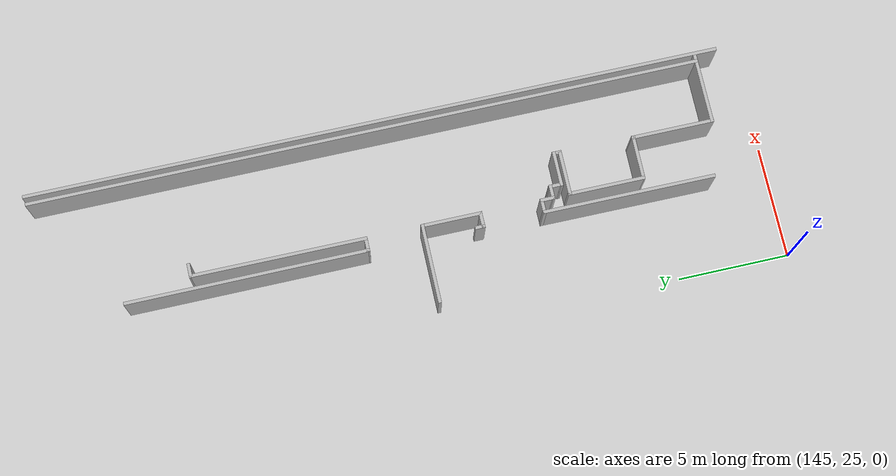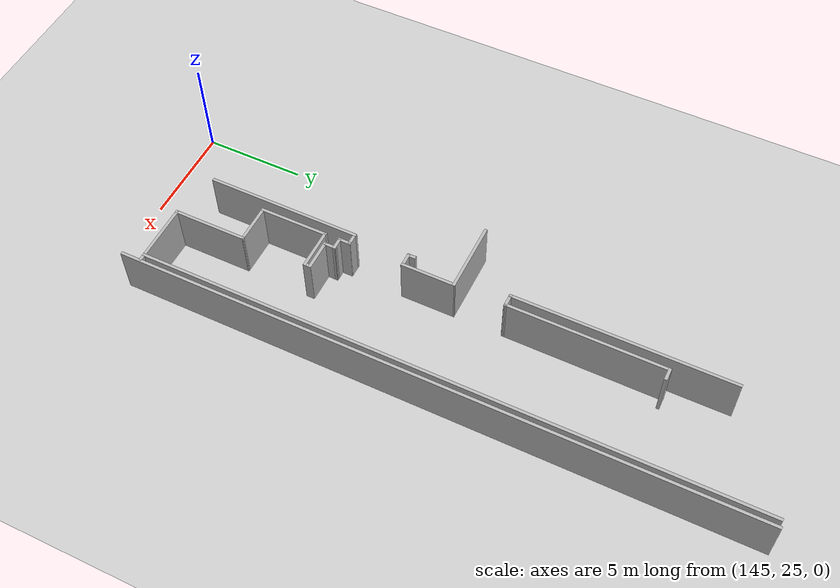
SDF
<sdf version="1.6">
 <world name="default">
  <model name="ground_plane">
   <static>1</static>
   <link name="link">
    <collision name="collision">
     <geometry><plane><normal>0 0 1</normal><size>200 100</size></plane></geometry>
     <surface><friction><ode><mu>100</mu><mu2>50</mu2></ode></friction></surface>
    </collision>
    <visual name="visual">
     <cast_shadows>0</cast_shadows>
     <geometry><plane><normal>0 0 1</normal><size>200 100</size></plane></geometry>
     <material>
      <script><uri>file://media/materials/scripts/gazebo.material</uri><name>Gazebo/Grey</name></script>
     </material>
    </visual>
   </link>
  </model>
  <model name="vgke_production">
   <link name="Wall_12">
    <pose>50.1996 -15.7948 0 0 -0 1.56852</pose>
    <visual name="Wall_12_Visual">
     <pose>0 0 1.25 0 -0 0</pose>
     <geometry><box><size>7.80179 0.15 2.5</size></box></geometry>
    </visual>
    <collision name="Wall_12_Collision">
     <pose>0 0 1.25 0 -0 0</pose>
     <geometry><box><size>7.80179 0.15 2.5</size></box></geometry>
    </collision>
    <inertial>
     <inertia><ixx>1</ixx><ixy>0</ixy><ixz>0</ixz><iyy>1</iyy><iyz>0</iyz><izz>1</izz></inertia>
     <mass>1</mass>
    </inertial>
   </link>
   <link name="Wall_138">
    <pose>50.4745 -9.20167 0 0 -0 0</pose>
    <visual name="Wall_138_Visual">
     <pose>0 0 1.25 0 -0 0</pose>
     <geometry><box><size>0.720907 0.15 2.5</size></box></geometry>
    </visual>
    <collision name="Wall_138_Collision">
     <pose>0 0 1.25 0 -0 0</pose>
     <geometry><box><size>0.720907 0.15 2.5</size></box></geometry>
    </collision>
    <inertial>
     <inertia><ixx>1</ixx><ixy>0</ixy><ixz>0</ixz><iyy>1</iyy><iyz>0</iyz><izz>1</izz></inertia>
     <mass>1</mass>
    </inertial>
   </link>
   <link name="Wall_14">
    <pose>50.475 -11.9697 0 0 0 -0.002665</pose>
    <visual name="Wall_14_Visual">
     <pose>0 0 1.25 0 -0 0</pose>
     <geometry><box><size>0.683464 0.15 2.5</size></box></geometry>
    </visual>
    <collision name="Wall_14_Collision">
     <pose>0 0 1.25 0 -0 0</pose>
     <geometry><box><size>0.683464 0.15 2.5</size></box></geometry>
    </collision>
    <inertial>
     <inertia><ixx>1</ixx><ixy>0</ixy><ixz>0</ixz><iyy>1</iyy><iyz>0</iyz><izz>1</izz></inertia>
     <mass>1</mass>
    </inertial>
   </link>
   <link name="Wall_140">
    <pose>50.76 -7.90167 0 0 -0 1.5708</pose>
    <visual name="Wall_140_Visual">
     <pose>0 0 1.25 0 -0 0</pose>
     <geometry><box><size>2.75 0.15 2.5</size></box></geometry>
    </visual>
    <collision name="Wall_140_Collision">
     <pose>0 0 1.25 0 -0 0</pose>
     <geometry><box><size>2.75 0.15 2.5</size></box></geometry>
    </collision>
    <inertial>
     <inertia><ixx>1</ixx><ixy>0</ixy><ixz>0</ixz><iyy>1</iyy><iyz>0</iyz><izz>1</izz></inertia>
     <mass>1</mass>
    </inertial>
   </link>
   <link name="Wall_141">
    <pose>49.0433 -6.60058 0 0 -0 3.14096</pose>
    <visual name="Wall_141_Visual">
     <pose>0 0 1.25 0 -0 0</pose>
     <geometry><box><size>3.58336 0.15 2.5</size></box></geometry>
    </visual>
    <collision name="Wall_141_Collision">
     <pose>0 0 1.25 0 -0 0</pose>
     <geometry><box><size>3.58336 0.15 2.5</size></box></geometry>
    </collision>
    <inertial>
     <inertia><ixx>1</ixx><ixy>0</ixy><ixz>0</ixz><iyy>1</iyy><iyz>0</iyz><izz>1</izz></inertia>
     <mass>1</mass>
    </inertial>
   </link>
   <link name="Wall_15">
    <pose>50.7471 -12.2307 0 0 0 -1.5708</pose>
    <visual name="Wall_15_Visual">
     <pose>0 0 1.25 0 -0 0</pose>
     <geometry><box><size>0.659957 0.15 2.5</size></box></geometry>
    </visual>
    <collision name="Wall_15_Collision">
     <pose>0 0 1.25 0 -0 0</pose>
     <geometry><box><size>0.659957 0.15 2.5</size></box></geometry>
    </collision>
    <inertial>
     <inertia><ixx>1</ixx><ixy>0</ixy><ixz>0</ixz><iyy>1</iyy><iyz>0</iyz><izz>1</izz></inertia>
     <mass>1</mass>
    </inertial>
   </link>
   <link name="Wall_153">
    <pose>50.1639 -9.05602 0 0 0 -1.56162</pose>
    <visual name="Wall_153_Visual">
     <pose>0 0 1.25 0 -0 0</pose>
     <geometry><box><size>0.448969 0.15 2.5</size></box></geometry>
    </visual>
    <collision name="Wall_153_Collision">
     <pose>0 0 1.25 0 -0 0</pose>
     <geometry><box><size>0.448969 0.15 2.5</size></box></geometry>
    </collision>
    <inertial>
     <inertia><ixx>1</ixx><ixy>0</ixy><ixz>0</ixz><iyy>1</iyy><iyz>0</iyz><izz>1</izz></inertia>
     <mass>1</mass>
    </inertial>
   </link>
   <link name="Wall_18">
    <pose>51.0074 -12.4853 0 0 -0 0.001398</pose>
    <visual name="Wall_18_Visual">
     <pose>0 0 1.25 0 -0 0</pose>
     <geometry><box><size>0.670553 0.15 2.5</size></box></geometry>
    </visual>
    <collision name="Wall_18_Collision">
     <pose>0 0 1.25 0 -0 0</pose>
     <geometry><box><size>0.670553 0.15 2.5</size></box></geometry>
    </collision>
    <inertial>
     <inertia><ixx>1</ixx><ixy>0</ixy><ixz>0</ixz><iyy>1</iyy><iyz>0</iyz><izz>1</izz></inertia>
     <mass>1</mass>
    </inertial>
   </link>
   <link name="Wall_22">
    <pose>51.2673 -12.7335 0 0 0 -1.57201</pose>
    <visual name="Wall_22_Visual">
     <pose>0 0 1.25 0 -0 0</pose>
     <geometry><box><size>0.647317 0.15 2.5</size></box></geometry>
    </visual>
    <collision name="Wall_22_Collision">
     <pose>0 0 1.25 0 -0 0</pose>
     <geometry><box><size>0.647317 0.15 2.5</size></box></geometry>
    </collision>
    <inertial>
     <inertia><ixx>1</ixx><ixy>0</ixy><ixz>0</ixz><iyy>1</iyy><iyz>0</iyz><izz>1</izz></inertia>
     <mass>1</mass>
    </inertial>
   </link>
   <link name="Wall_30">
    <pose>51.9831 -12.9827 0 0 0 -0.000703</pose>
    <visual name="Wall_30_Visual">
     <pose>0 0 1.25 0 -0 0</pose>
     <geometry><box><size>1.58221 0.15 2.5</size></box></geometry>
    </visual>
    <collision name="Wall_30_Collision">
     <pose>0 0 1.25 0 -0 0</pose>
     <geometry><box><size>1.58221 0.15 2.5</size></box></geometry>
    </collision>
    <inertial>
     <inertia><ixx>1</ixx><ixy>0</ixy><ixz>0</ixz><iyy>1</iyy><iyz>0</iyz><izz>1</izz></inertia>
     <mass>1</mass>
    </inertial>
   </link>
   <link name="Wall_31">
    <pose>52.6993 -13.1157 0 0 0 -1.5708</pose>
    <visual name="Wall_31_Visual">
     <pose>0 0 1.25 0 -0 0</pose>
     <geometry><box><size>0.414891 0.15 2.5</size></box></geometry>
    </visual>
    <collision name="Wall_31_Collision">
     <pose>0 0 1.25 0 -0 0</pose>
     <geometry><box><size>0.414891 0.15 2.5</size></box></geometry>
    </collision>
    <inertial>
     <inertia><ixx>1</ixx><ixy>0</ixy><ixz>0</ixz><iyy>1</iyy><iyz>0</iyz><izz>1</izz></inertia>
     <mass>1</mass>
    </inertial>
   </link>
   <link name="Wall_32">
    <pose>51.7345 -13.2481 0 0 -0 3.14159</pose>
    <visual name="Wall_32_Visual">
     <pose>0 0 1.25 0 -0 0</pose>
     <geometry><box><size>2.07952 0.15 2.5</size></box></geometry>
    </visual>
    <collision name="Wall_32_Collision">
     <pose>0 0 1.25 0 -0 0</pose>
     <geometry><box><size>2.07952 0.15 2.5</size></box></geometry>
    </collision>
    <inertial>
     <inertia><ixx>1</ixx><ixy>0</ixy><ixz>0</ixz><iyy>1</iyy><iyz>0</iyz><izz>1</izz></inertia>
     <mass>1</mass>
    </inertial>
   </link>
   <link name="Wall_334">
    <pose>55.8267 -5.44284 0 0 0 -1.5708</pose>
    <visual name="Wall_334_Visual">
     <pose>0 0 1.25 0 -0 0</pose>
     <geometry><box><size>31.5 0.15 2.5</size></box></geometry>
    </visual>
    <collision name="Wall_334_Collision">
     <pose>0 0 1.25 0 -0 0</pose>
     <geometry><box><size>31.5 0.15 2.5</size></box></geometry>
    </collision>
    <inertial>
     <inertia><ixx>1</ixx><ixy>0</ixy><ixz>0</ixz><iyy>1</iyy><iyz>0</iyz><izz>1</izz></inertia>
     <mass>1</mass>
    </inertial>
   </link>
   <link name="Wall_338">
    <pose>50.4756 -4.04468 0 0 0 -0.007038</pose>
    <visual name="Wall_338_Visual">
     <pose>0 0 1.25 0 -0 0</pose>
     <geometry><box><size>0.690739 0.15 2.5</size></box></geometry>
    </visual>
    <collision name="Wall_338_Collision">
     <pose>0 0 1.25 0 -0 0</pose>
     <geometry><box><size>0.690739 0.15 2.5</size></box></geometry>
    </collision>
    <inertial>
     <inertia><ixx>1</ixx><ixy>0</ixy><ixz>0</ixz><iyy>1</iyy><iyz>0</iyz><izz>1</izz></inertia>
     <mass>1</mass>
    </inertial>
   </link>
   <link name="Wall_339">
    <pose>50.7545 -0.144958 0 0 -0 1.56861</pose>
    <visual name="Wall_339_Visual">
     <pose>0 0 1.25 0 -0 0</pose>
     <geometry><box><size>7.94156 0.15 2.5</size></box></geometry>
    </visual>
    <collision name="Wall_339_Collision">
     <pose>0 0 1.25 0 -0 0</pose>
     <geometry><box><size>7.94156 0.15 2.5</size></box></geometry>
    </collision>
    <inertial>
     <inertia><ixx>1</ixx><ixy>0</ixy><ixz>0</ixz><iyy>1</iyy><iyz>0</iyz><izz>1</izz></inertia>
     <mass>1</mass>
    </inertial>
   </link>
   <link name="Wall_34">
    <pose>50.7697 -14.9127 0 0 0 -1.5708</pose>
    <visual name="Wall_34_Visual">
     <pose>0 0 1.25 0 -0 0</pose>
     <geometry><box><size>3.47928 0.15 2.5</size></box></geometry>
    </visual>
    <collision name="Wall_34_Collision">
     <pose>0 0 1.25 0 -0 0</pose>
     <geometry><box><size>3.47928 0.15 2.5</size></box></geometry>
    </collision>
    <inertial>
     <inertia><ixx>1</ixx><ixy>0</ixy><ixz>0</ixz><iyy>1</iyy><iyz>0</iyz><izz>1</izz></inertia>
     <mass>1</mass>
    </inertial>
   </link>
   <link name="Wall_341">
    <pose>51.0115 3.75105 0 0 -0 0.000958</pose>
    <visual name="Wall_341_Visual">
     <pose>0 0 1.25 0 -0 0</pose>
     <geometry><box><size>0.646933 0.15 2.5</size></box></geometry>
    </visual>
    <collision name="Wall_341_Collision">
     <pose>0 0 1.25 0 -0 0</pose>
     <geometry><box><size>0.646933 0.15 2.5</size></box></geometry>
    </collision>
    <inertial>
     <inertia><ixx>1</ixx><ixy>0</ixy><ixz>0</ixz><iyy>1</iyy><iyz>0</iyz><izz>1</izz></inertia>
     <mass>1</mass>
    </inertial>
   </link>
   <link name="Wall_356">
    <pose>50.196 1.36161 0 0 0 -1.56909</pose>
    <visual name="Wall_356_Visual">
     <pose>0 0 1.25 0 -0 0</pose>
     <geometry><box><size>10.9588 0.15 2.5</size></box></geometry>
    </visual>
    <collision name="Wall_356_Collision">
     <pose>0 0 1.25 0 -0 0</pose>
     <geometry><box><size>10.9588 0.15 2.5</size></box></geometry>
    </collision>
    <inertial>
     <inertia><ixx>1</ixx><ixy>0</ixy><ixz>0</ixz><iyy>1</iyy><iyz>0</iyz><izz>1</izz></inertia>
     <mass>1</mass>
    </inertial>
   </link>
   <link name="Wall_40">
    <pose>52.6497 -18.385 0 0 -0 1.5708</pose>
    <visual name="Wall_40_Visual">
     <pose>0 0 1.25 0 -0 0</pose>
     <geometry><box><size>3.75 0.15 2.5</size></box></geometry>
    </visual>
    <collision name="Wall_40_Collision">
     <pose>0 0 1.25 0 -0 0</pose>
     <geometry><box><size>3.75 0.15 2.5</size></box></geometry>
    </collision>
    <inertial>
     <inertia><ixx>1</ixx><ixy>0</ixy><ixz>0</ixz><iyy>1</iyy><iyz>0</iyz><izz>1</izz></inertia>
     <mass>1</mass>
    </inertial>
   </link>
   <link name="Wall_41">
    <pose>51.7097 -16.5812 0 0 -0 3.13751</pose>
    <visual name="Wall_41_Visual">
     <pose>0 0 1.25 0 -0 0</pose>
     <geometry><box><size>2.02997 0.15 2.5</size></box></geometry>
    </visual>
    <collision name="Wall_41_Collision">
     <pose>0 0 1.25 0 -0 0</pose>
     <geometry><box><size>2.02997 0.15 2.5</size></box></geometry>
    </collision>
    <inertial>
     <inertia><ixx>1</ixx><ixy>0</ixy><ixz>0</ixz><iyy>1</iyy><iyz>0</iyz><izz>1</izz></inertia>
     <mass>1</mass>
    </inertial>
   </link>
   <link name="Wall_618">
    <pose>54.1975 -20.1801 0 0 -0 3.14159</pose>
    <visual name="Wall_618_Visual">
     <pose>0 0 1.25 0 -0 0</pose>
     <geometry><box><size>3.23732 0.15 2.5</size></box></geometry>
    </visual>
    <collision name="Wall_618_Collision">
     <pose>0 0 1.25 0 -0 0</pose>
     <geometry><box><size>3.23732 0.15 2.5</size></box></geometry>
    </collision>
    <inertial>
     <inertia><ixx>1</ixx><ixy>0</ixy><ixz>0</ixz><iyy>1</iyy><iyz>0</iyz><izz>1</izz></inertia>
     <mass>1</mass>
    </inertial>
   </link>
   <link name="Wall_619">
    <pose>55.4694 -5.00512 0 0 -0 1.5708</pose>
    <visual name="Wall_619_Visual">
     <pose>0 0 1.25 0 -0 0</pose>
     <geometry><box><size>30.5 0.15 2.5</size></box></geometry>
    </visual>
    <collision name="Wall_619_Collision">
     <pose>0 0 1.25 0 -0 0</pose>
     <geometry><box><size>30.5 0.15 2.5</size></box></geometry>
    </collision>
    <inertial>
     <inertia><ixx>1</ixx><ixy>0</ixy><ixz>0</ixz><iyy>1</iyy><iyz>0</iyz><izz>1</izz></inertia>
     <mass>1</mass>
    </inertial>
   </link>
   <pose>98.6 47.426 0.01 0 0 0</pose>
  </model>
 </world>
</sdf>
